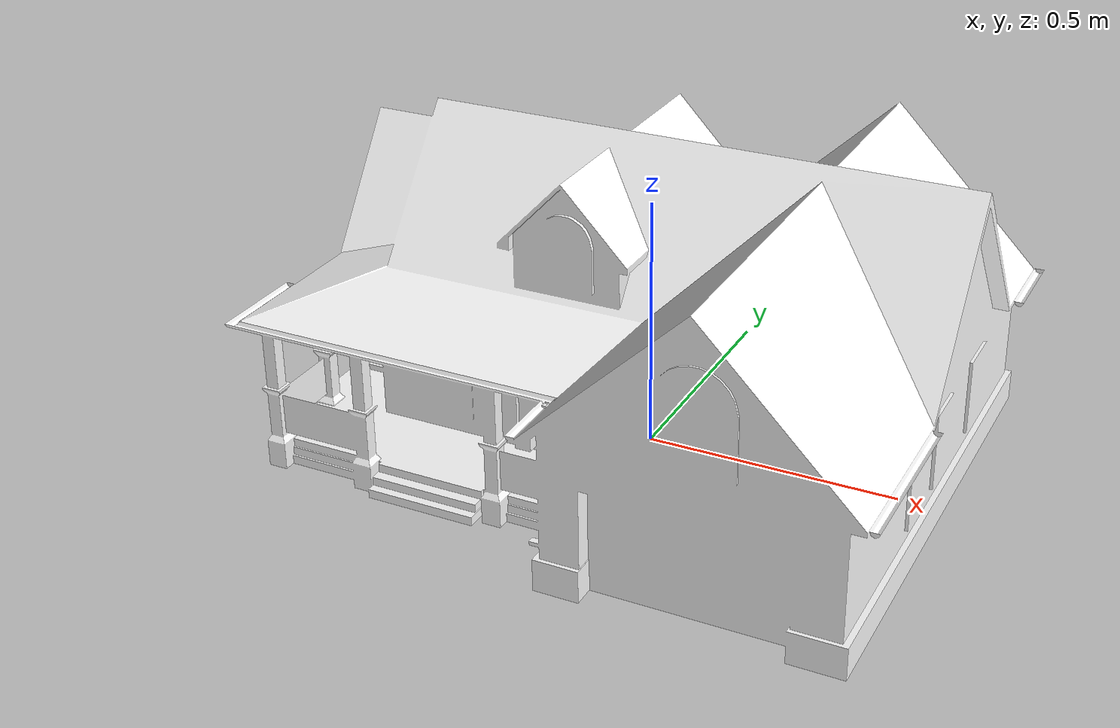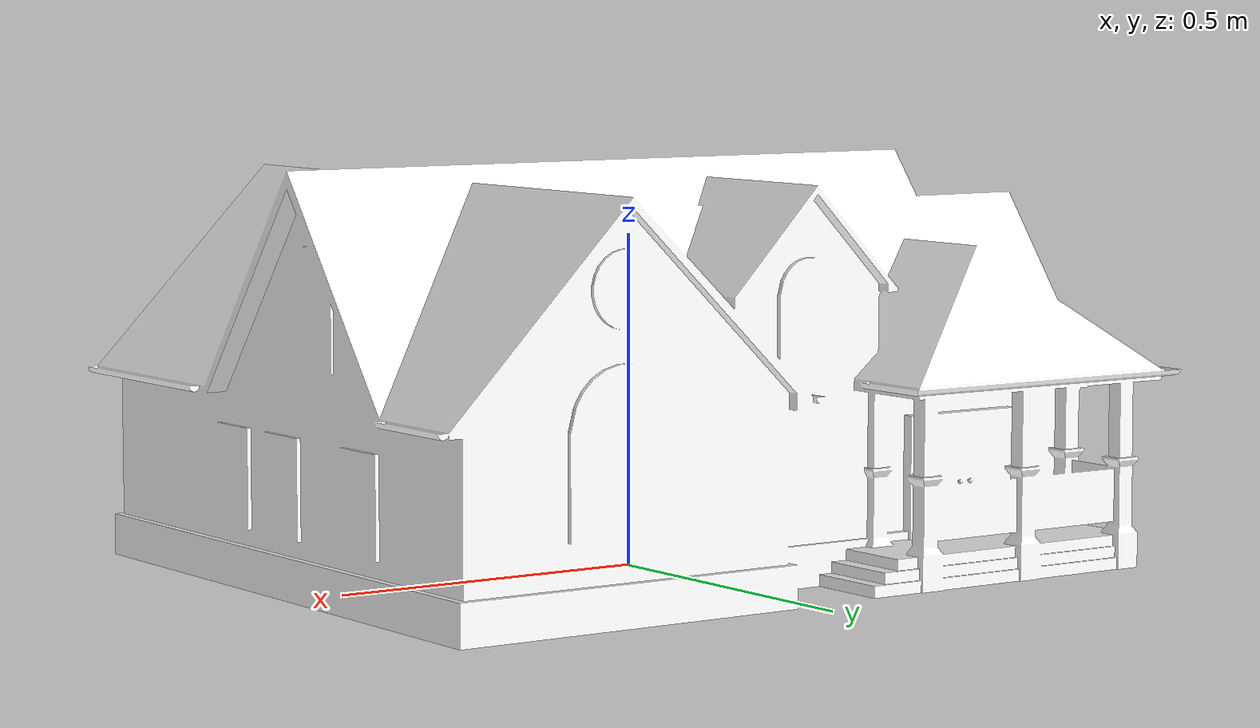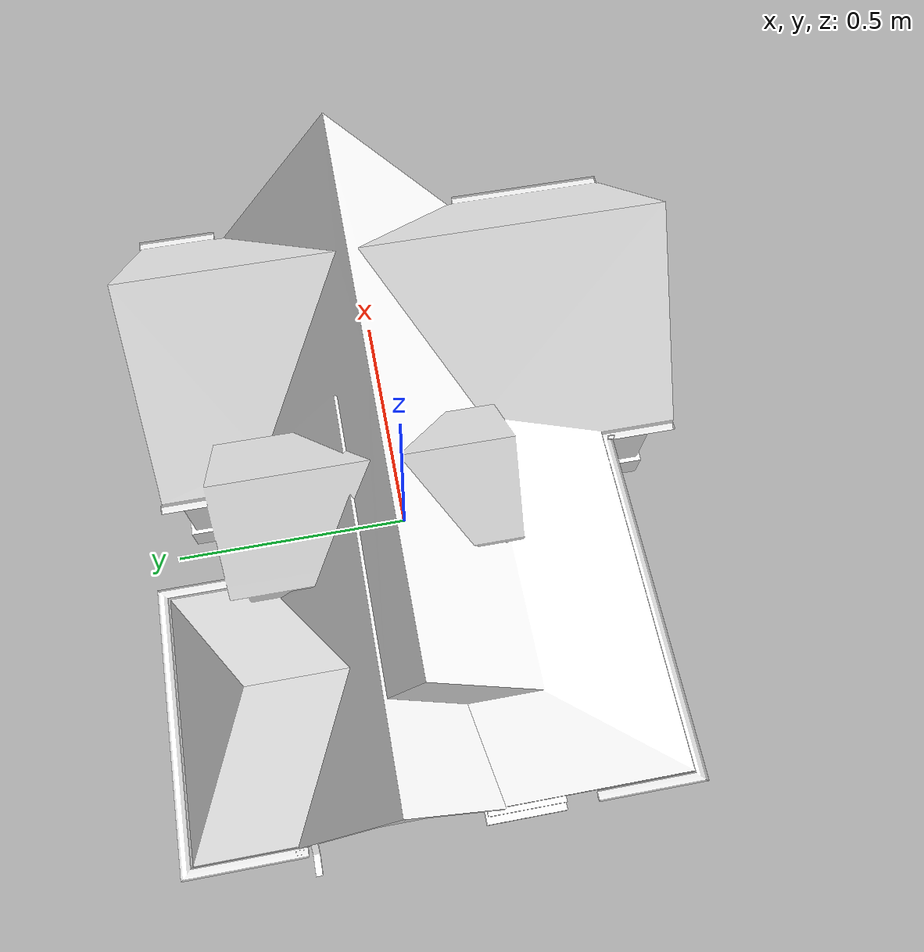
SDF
<?xml version="1.0" ?>
<sdf version="1.5">
  <model name="House 1">
    <static>true</static>
    <link name="link">
      <collision name="collision">
        <geometry>
          <mesh>
            <uri>model://house_1/meshes/house_1.dae</uri>
            <scale>0.12 0.12 0.12</scale>
          </mesh>
        </geometry>
      </collision>
      <visual name="visual">
        <geometry>
          <mesh>
            <uri>model://house_1/meshes/house_1.dae</uri>
            <scale>0.12 0.12 0.12</scale>
          </mesh>
        </geometry>
        <material>
          <script>
            <uri>model://house_1/materials/scripts</uri>
            <uri>model://house_1/materials/textures</uri>
            <name>House_1/Diffuse</name>
          </script>
          <shader type="normal_map_tangent_space">
            <normal_map>House_1_Normal.png</normal_map>
          </shader>
        </material>
      </visual>
    </link>
  </model>
</sdf>
